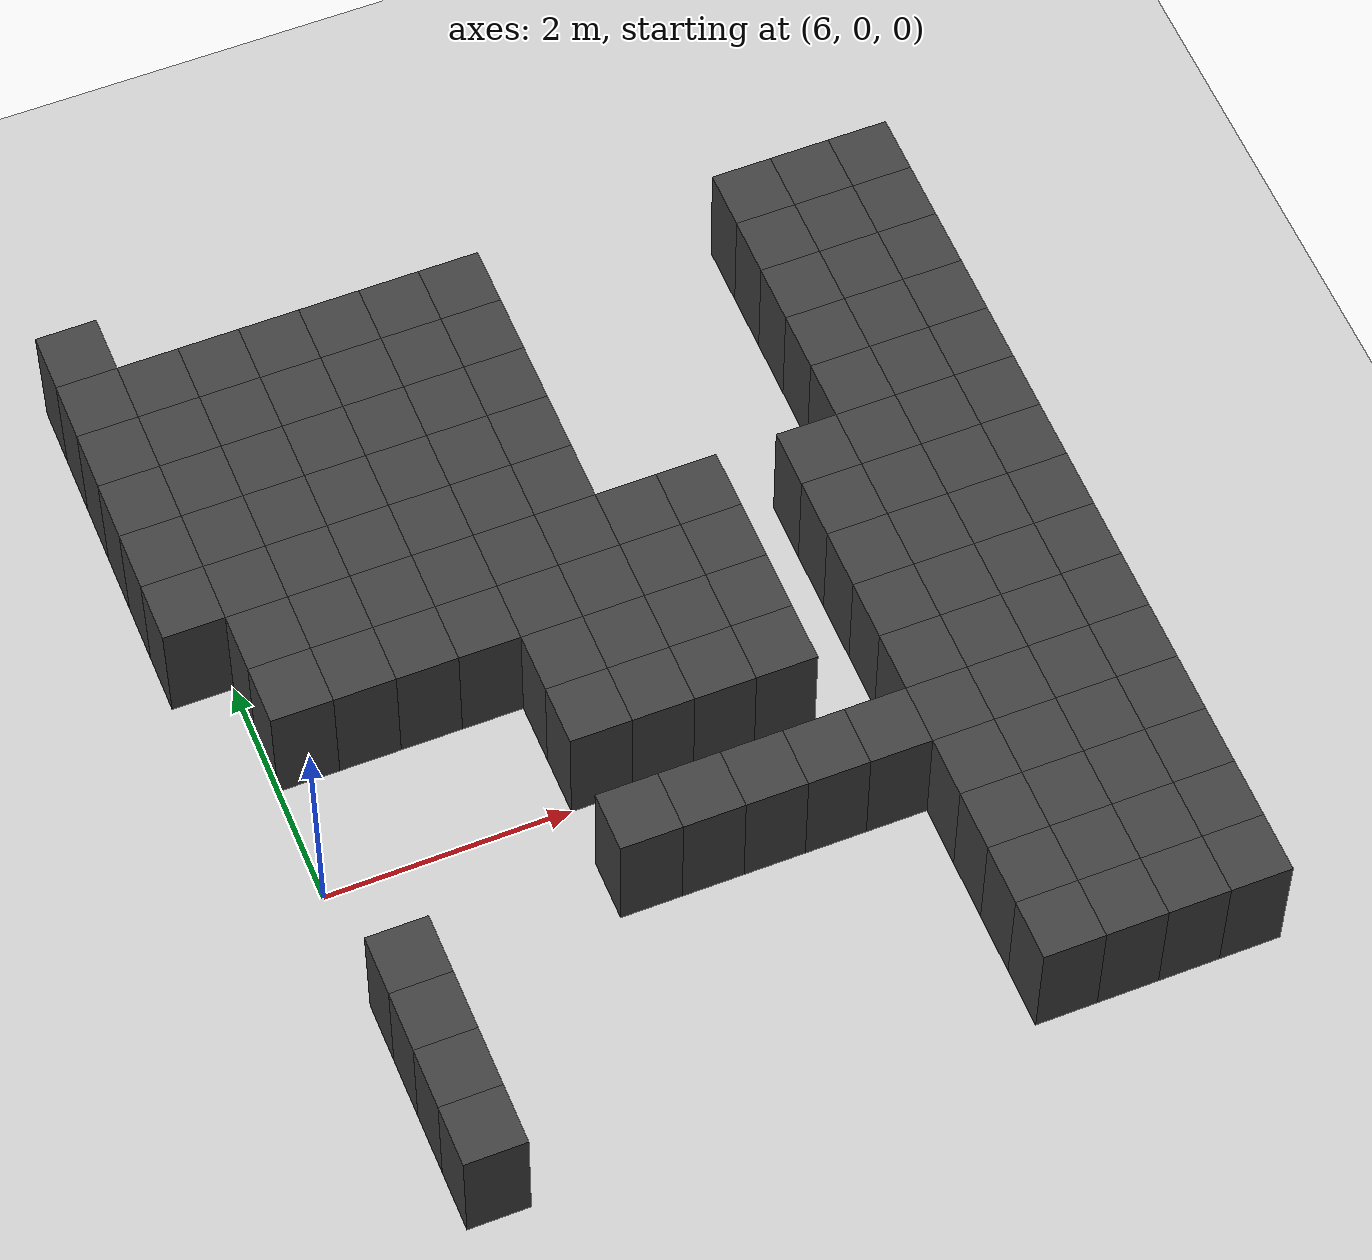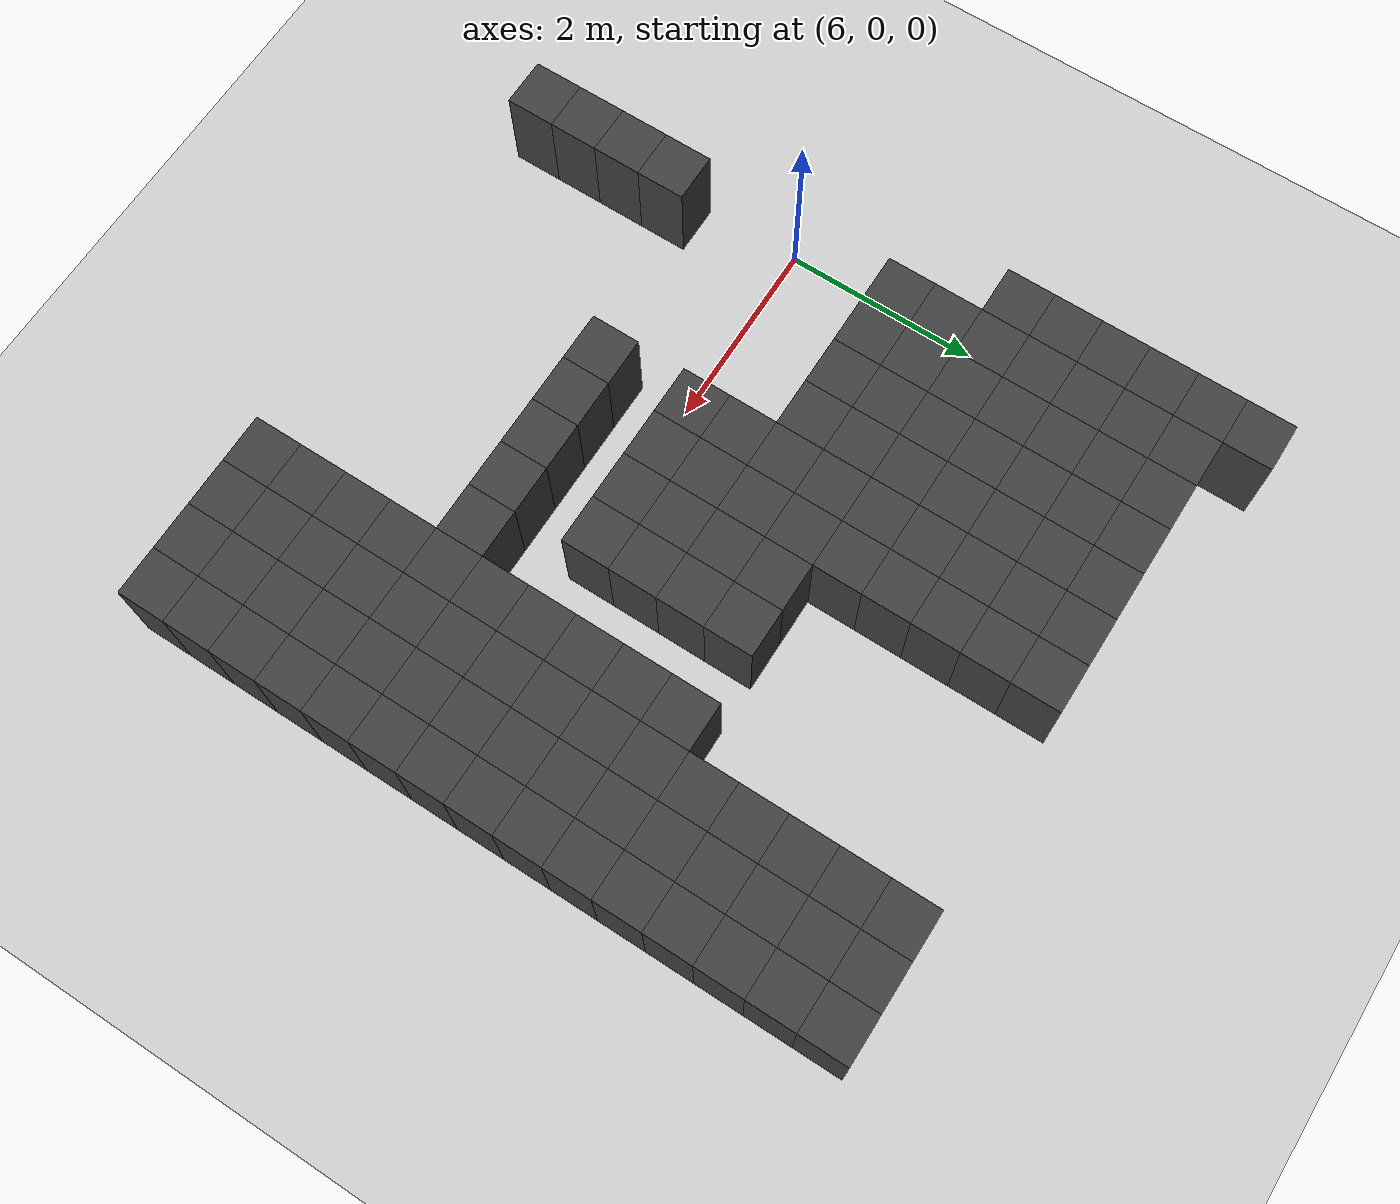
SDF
<sdf version="1.7">
 <world name="map_13994">
  <model name="ground_plane">
   <static>true</static>
   <link name="link">
    <collision name="collision">
     <geometry><plane><normal>0 0 1</normal><size>200 200</size></plane></geometry>
    </collision>
    <visual name="visual">
     <geometry><plane><normal>0 0 1</normal><size>200 200</size></plane></geometry>
     <material><ambient>0.8 0.8 0.8 1</ambient><diffuse>0.8 0.8 0.8 1</diffuse></material>
    </visual>
   </link>
  </model>
  <model name="maze_environment">
   <static>true</static>
   <link name="wall_471">
    <pose>5.750 4.750 0.500 0 0 0</pose>
    <collision name="col"><geometry><box><size>0.5 0.5 1.0</size></box></geometry></collision>
    <visual name="vis">
     <geometry><box><size>0.5 0.5 1.0</size></box></geometry>
     <material><ambient>0.15 0.15 0.15 1</ambient><diffuse>0.25 0.25 0.25 1</diffuse></material>
    </visual>
   </link>
   <link name="wall_511">
    <pose>5.750 4.250 0.500 0 0 0</pose>
    <collision name="col"><geometry><box><size>0.5 0.5 1.0</size></box></geometry></collision>
    <visual name="vis">
     <geometry><box><size>0.5 0.5 1.0</size></box></geometry>
     <material><ambient>0.15 0.15 0.15 1</ambient><diffuse>0.25 0.25 0.25 1</diffuse></material>
    </visual>
   </link>
   <link name="wall_512">
    <pose>6.250 4.250 0.500 0 0 0</pose>
    <collision name="col"><geometry><box><size>0.5 0.5 1.0</size></box></geometry></collision>
    <visual name="vis">
     <geometry><box><size>0.5 0.5 1.0</size></box></geometry>
     <material><ambient>0.15 0.15 0.15 1</ambient><diffuse>0.25 0.25 0.25 1</diffuse></material>
    </visual>
   </link>
   <link name="wall_513">
    <pose>6.750 4.250 0.500 0 0 0</pose>
    <collision name="col"><geometry><box><size>0.5 0.5 1.0</size></box></geometry></collision>
    <visual name="vis">
     <geometry><box><size>0.5 0.5 1.0</size></box></geometry>
     <material><ambient>0.15 0.15 0.15 1</ambient><diffuse>0.25 0.25 0.25 1</diffuse></material>
    </visual>
   </link>
   <link name="wall_514">
    <pose>7.250 4.250 0.500 0 0 0</pose>
    <collision name="col"><geometry><box><size>0.5 0.5 1.0</size></box></geometry></collision>
    <visual name="vis">
     <geometry><box><size>0.5 0.5 1.0</size></box></geometry>
     <material><ambient>0.15 0.15 0.15 1</ambient><diffuse>0.25 0.25 0.25 1</diffuse></material>
    </visual>
   </link>
   <link name="wall_515">
    <pose>7.750 4.250 0.500 0 0 0</pose>
    <collision name="col"><geometry><box><size>0.5 0.5 1.0</size></box></geometry></collision>
    <visual name="vis">
     <geometry><box><size>0.5 0.5 1.0</size></box></geometry>
     <material><ambient>0.15 0.15 0.15 1</ambient><diffuse>0.25 0.25 0.25 1</diffuse></material>
    </visual>
   </link>
   <link name="wall_516">
    <pose>8.250 4.250 0.500 0 0 0</pose>
    <collision name="col"><geometry><box><size>0.5 0.5 1.0</size></box></geometry></collision>
    <visual name="vis">
     <geometry><box><size>0.5 0.5 1.0</size></box></geometry>
     <material><ambient>0.15 0.15 0.15 1</ambient><diffuse>0.25 0.25 0.25 1</diffuse></material>
    </visual>
   </link>
   <link name="wall_517">
    <pose>8.750 4.250 0.500 0 0 0</pose>
    <collision name="col"><geometry><box><size>0.5 0.5 1.0</size></box></geometry></collision>
    <visual name="vis">
     <geometry><box><size>0.5 0.5 1.0</size></box></geometry>
     <material><ambient>0.15 0.15 0.15 1</ambient><diffuse>0.25 0.25 0.25 1</diffuse></material>
    </visual>
   </link>
   <link name="wall_518">
    <pose>11.250 4.250 0.500 0 0 0</pose>
    <collision name="col"><geometry><box><size>0.5 0.5 1.0</size></box></geometry></collision>
    <visual name="vis">
     <geometry><box><size>0.5 0.5 1.0</size></box></geometry>
     <material><ambient>0.15 0.15 0.15 1</ambient><diffuse>0.25 0.25 0.25 1</diffuse></material>
    </visual>
   </link>
   <link name="wall_519">
    <pose>11.750 4.250 0.500 0 0 0</pose>
    <collision name="col"><geometry><box><size>0.5 0.5 1.0</size></box></geometry></collision>
    <visual name="vis">
     <geometry><box><size>0.5 0.5 1.0</size></box></geometry>
     <material><ambient>0.15 0.15 0.15 1</ambient><diffuse>0.25 0.25 0.25 1</diffuse></material>
    </visual>
   </link>
   <link name="wall_520">
    <pose>12.250 4.250 0.500 0 0 0</pose>
    <collision name="col"><geometry><box><size>0.5 0.5 1.0</size></box></geometry></collision>
    <visual name="vis">
     <geometry><box><size>0.5 0.5 1.0</size></box></geometry>
     <material><ambient>0.15 0.15 0.15 1</ambient><diffuse>0.25 0.25 0.25 1</diffuse></material>
    </visual>
   </link>
   <link name="wall_551">
    <pose>5.750 3.750 0.500 0 0 0</pose>
    <collision name="col"><geometry><box><size>0.5 0.5 1.0</size></box></geometry></collision>
    <visual name="vis">
     <geometry><box><size>0.5 0.5 1.0</size></box></geometry>
     <material><ambient>0.15 0.15 0.15 1</ambient><diffuse>0.25 0.25 0.25 1</diffuse></material>
    </visual>
   </link>
   <link name="wall_552">
    <pose>6.250 3.750 0.500 0 0 0</pose>
    <collision name="col"><geometry><box><size>0.5 0.5 1.0</size></box></geometry></collision>
    <visual name="vis">
     <geometry><box><size>0.5 0.5 1.0</size></box></geometry>
     <material><ambient>0.15 0.15 0.15 1</ambient><diffuse>0.25 0.25 0.25 1</diffuse></material>
    </visual>
   </link>
   <link name="wall_553">
    <pose>6.750 3.750 0.500 0 0 0</pose>
    <collision name="col"><geometry><box><size>0.5 0.5 1.0</size></box></geometry></collision>
    <visual name="vis">
     <geometry><box><size>0.5 0.5 1.0</size></box></geometry>
     <material><ambient>0.15 0.15 0.15 1</ambient><diffuse>0.25 0.25 0.25 1</diffuse></material>
    </visual>
   </link>
   <link name="wall_554">
    <pose>7.250 3.750 0.500 0 0 0</pose>
    <collision name="col"><geometry><box><size>0.5 0.5 1.0</size></box></geometry></collision>
    <visual name="vis">
     <geometry><box><size>0.5 0.5 1.0</size></box></geometry>
     <material><ambient>0.15 0.15 0.15 1</ambient><diffuse>0.25 0.25 0.25 1</diffuse></material>
    </visual>
   </link>
   <link name="wall_555">
    <pose>7.750 3.750 0.500 0 0 0</pose>
    <collision name="col"><geometry><box><size>0.5 0.5 1.0</size></box></geometry></collision>
    <visual name="vis">
     <geometry><box><size>0.5 0.5 1.0</size></box></geometry>
     <material><ambient>0.15 0.15 0.15 1</ambient><diffuse>0.25 0.25 0.25 1</diffuse></material>
    </visual>
   </link>
   <link name="wall_556">
    <pose>8.250 3.750 0.500 0 0 0</pose>
    <collision name="col"><geometry><box><size>0.5 0.5 1.0</size></box></geometry></collision>
    <visual name="vis">
     <geometry><box><size>0.5 0.5 1.0</size></box></geometry>
     <material><ambient>0.15 0.15 0.15 1</ambient><diffuse>0.25 0.25 0.25 1</diffuse></material>
    </visual>
   </link>
   <link name="wall_557">
    <pose>8.750 3.750 0.500 0 0 0</pose>
    <collision name="col"><geometry><box><size>0.5 0.5 1.0</size></box></geometry></collision>
    <visual name="vis">
     <geometry><box><size>0.5 0.5 1.0</size></box></geometry>
     <material><ambient>0.15 0.15 0.15 1</ambient><diffuse>0.25 0.25 0.25 1</diffuse></material>
    </visual>
   </link>
   <link name="wall_558">
    <pose>11.250 3.750 0.500 0 0 0</pose>
    <collision name="col"><geometry><box><size>0.5 0.5 1.0</size></box></geometry></collision>
    <visual name="vis">
     <geometry><box><size>0.5 0.5 1.0</size></box></geometry>
     <material><ambient>0.15 0.15 0.15 1</ambient><diffuse>0.25 0.25 0.25 1</diffuse></material>
    </visual>
   </link>
   <link name="wall_559">
    <pose>11.750 3.750 0.500 0 0 0</pose>
    <collision name="col"><geometry><box><size>0.5 0.5 1.0</size></box></geometry></collision>
    <visual name="vis">
     <geometry><box><size>0.5 0.5 1.0</size></box></geometry>
     <material><ambient>0.15 0.15 0.15 1</ambient><diffuse>0.25 0.25 0.25 1</diffuse></material>
    </visual>
   </link>
   <link name="wall_560">
    <pose>12.250 3.750 0.500 0 0 0</pose>
    <collision name="col"><geometry><box><size>0.5 0.5 1.0</size></box></geometry></collision>
    <visual name="vis">
     <geometry><box><size>0.5 0.5 1.0</size></box></geometry>
     <material><ambient>0.15 0.15 0.15 1</ambient><diffuse>0.25 0.25 0.25 1</diffuse></material>
    </visual>
   </link>
   <link name="wall_591">
    <pose>5.750 3.250 0.500 0 0 0</pose>
    <collision name="col"><geometry><box><size>0.5 0.5 1.0</size></box></geometry></collision>
    <visual name="vis">
     <geometry><box><size>0.5 0.5 1.0</size></box></geometry>
     <material><ambient>0.15 0.15 0.15 1</ambient><diffuse>0.25 0.25 0.25 1</diffuse></material>
    </visual>
   </link>
   <link name="wall_592">
    <pose>6.250 3.250 0.500 0 0 0</pose>
    <collision name="col"><geometry><box><size>0.5 0.5 1.0</size></box></geometry></collision>
    <visual name="vis">
     <geometry><box><size>0.5 0.5 1.0</size></box></geometry>
     <material><ambient>0.15 0.15 0.15 1</ambient><diffuse>0.25 0.25 0.25 1</diffuse></material>
    </visual>
   </link>
   <link name="wall_593">
    <pose>6.750 3.250 0.500 0 0 0</pose>
    <collision name="col"><geometry><box><size>0.5 0.5 1.0</size></box></geometry></collision>
    <visual name="vis">
     <geometry><box><size>0.5 0.5 1.0</size></box></geometry>
     <material><ambient>0.15 0.15 0.15 1</ambient><diffuse>0.25 0.25 0.25 1</diffuse></material>
    </visual>
   </link>
   <link name="wall_594">
    <pose>7.250 3.250 0.500 0 0 0</pose>
    <collision name="col"><geometry><box><size>0.5 0.5 1.0</size></box></geometry></collision>
    <visual name="vis">
     <geometry><box><size>0.5 0.5 1.0</size></box></geometry>
     <material><ambient>0.15 0.15 0.15 1</ambient><diffuse>0.25 0.25 0.25 1</diffuse></material>
    </visual>
   </link>
   <link name="wall_595">
    <pose>7.750 3.250 0.500 0 0 0</pose>
    <collision name="col"><geometry><box><size>0.5 0.5 1.0</size></box></geometry></collision>
    <visual name="vis">
     <geometry><box><size>0.5 0.5 1.0</size></box></geometry>
     <material><ambient>0.15 0.15 0.15 1</ambient><diffuse>0.25 0.25 0.25 1</diffuse></material>
    </visual>
   </link>
   <link name="wall_596">
    <pose>8.250 3.250 0.500 0 0 0</pose>
    <collision name="col"><geometry><box><size>0.5 0.5 1.0</size></box></geometry></collision>
    <visual name="vis">
     <geometry><box><size>0.5 0.5 1.0</size></box></geometry>
     <material><ambient>0.15 0.15 0.15 1</ambient><diffuse>0.25 0.25 0.25 1</diffuse></material>
    </visual>
   </link>
   <link name="wall_597">
    <pose>8.750 3.250 0.500 0 0 0</pose>
    <collision name="col"><geometry><box><size>0.5 0.5 1.0</size></box></geometry></collision>
    <visual name="vis">
     <geometry><box><size>0.5 0.5 1.0</size></box></geometry>
     <material><ambient>0.15 0.15 0.15 1</ambient><diffuse>0.25 0.25 0.25 1</diffuse></material>
    </visual>
   </link>
   <link name="wall_598">
    <pose>11.250 3.250 0.500 0 0 0</pose>
    <collision name="col"><geometry><box><size>0.5 0.5 1.0</size></box></geometry></collision>
    <visual name="vis">
     <geometry><box><size>0.5 0.5 1.0</size></box></geometry>
     <material><ambient>0.15 0.15 0.15 1</ambient><diffuse>0.25 0.25 0.25 1</diffuse></material>
    </visual>
   </link>
   <link name="wall_599">
    <pose>11.750 3.250 0.500 0 0 0</pose>
    <collision name="col"><geometry><box><size>0.5 0.5 1.0</size></box></geometry></collision>
    <visual name="vis">
     <geometry><box><size>0.5 0.5 1.0</size></box></geometry>
     <material><ambient>0.15 0.15 0.15 1</ambient><diffuse>0.25 0.25 0.25 1</diffuse></material>
    </visual>
   </link>
   <link name="wall_600">
    <pose>12.250 3.250 0.500 0 0 0</pose>
    <collision name="col"><geometry><box><size>0.5 0.5 1.0</size></box></geometry></collision>
    <visual name="vis">
     <geometry><box><size>0.5 0.5 1.0</size></box></geometry>
     <material><ambient>0.15 0.15 0.15 1</ambient><diffuse>0.25 0.25 0.25 1</diffuse></material>
    </visual>
   </link>
   <link name="wall_627">
    <pose>5.750 2.750 0.500 0 0 0</pose>
    <collision name="col"><geometry><box><size>0.5 0.5 1.0</size></box></geometry></collision>
    <visual name="vis">
     <geometry><box><size>0.5 0.5 1.0</size></box></geometry>
     <material><ambient>0.15 0.15 0.15 1</ambient><diffuse>0.25 0.25 0.25 1</diffuse></material>
    </visual>
   </link>
   <link name="wall_628">
    <pose>6.250 2.750 0.500 0 0 0</pose>
    <collision name="col"><geometry><box><size>0.5 0.5 1.0</size></box></geometry></collision>
    <visual name="vis">
     <geometry><box><size>0.5 0.5 1.0</size></box></geometry>
     <material><ambient>0.15 0.15 0.15 1</ambient><diffuse>0.25 0.25 0.25 1</diffuse></material>
    </visual>
   </link>
   <link name="wall_629">
    <pose>6.750 2.750 0.500 0 0 0</pose>
    <collision name="col"><geometry><box><size>0.5 0.5 1.0</size></box></geometry></collision>
    <visual name="vis">
     <geometry><box><size>0.5 0.5 1.0</size></box></geometry>
     <material><ambient>0.15 0.15 0.15 1</ambient><diffuse>0.25 0.25 0.25 1</diffuse></material>
    </visual>
   </link>
   <link name="wall_630">
    <pose>7.250 2.750 0.500 0 0 0</pose>
    <collision name="col"><geometry><box><size>0.5 0.5 1.0</size></box></geometry></collision>
    <visual name="vis">
     <geometry><box><size>0.5 0.5 1.0</size></box></geometry>
     <material><ambient>0.15 0.15 0.15 1</ambient><diffuse>0.25 0.25 0.25 1</diffuse></material>
    </visual>
   </link>
   <link name="wall_631">
    <pose>7.750 2.750 0.500 0 0 0</pose>
    <collision name="col"><geometry><box><size>0.5 0.5 1.0</size></box></geometry></collision>
    <visual name="vis">
     <geometry><box><size>0.5 0.5 1.0</size></box></geometry>
     <material><ambient>0.15 0.15 0.15 1</ambient><diffuse>0.25 0.25 0.25 1</diffuse></material>
    </visual>
   </link>
   <link name="wall_632">
    <pose>8.250 2.750 0.500 0 0 0</pose>
    <collision name="col"><geometry><box><size>0.5 0.5 1.0</size></box></geometry></collision>
    <visual name="vis">
     <geometry><box><size>0.5 0.5 1.0</size></box></geometry>
     <material><ambient>0.15 0.15 0.15 1</ambient><diffuse>0.25 0.25 0.25 1</diffuse></material>
    </visual>
   </link>
   <link name="wall_633">
    <pose>8.750 2.750 0.500 0 0 0</pose>
    <collision name="col"><geometry><box><size>0.5 0.5 1.0</size></box></geometry></collision>
    <visual name="vis">
     <geometry><box><size>0.5 0.5 1.0</size></box></geometry>
     <material><ambient>0.15 0.15 0.15 1</ambient><diffuse>0.25 0.25 0.25 1</diffuse></material>
    </visual>
   </link>
   <link name="wall_634">
    <pose>11.250 2.750 0.500 0 0 0</pose>
    <collision name="col"><geometry><box><size>0.5 0.5 1.0</size></box></geometry></collision>
    <visual name="vis">
     <geometry><box><size>0.5 0.5 1.0</size></box></geometry>
     <material><ambient>0.15 0.15 0.15 1</ambient><diffuse>0.25 0.25 0.25 1</diffuse></material>
    </visual>
   </link>
   <link name="wall_635">
    <pose>11.750 2.750 0.500 0 0 0</pose>
    <collision name="col"><geometry><box><size>0.5 0.5 1.0</size></box></geometry></collision>
    <visual name="vis">
     <geometry><box><size>0.5 0.5 1.0</size></box></geometry>
     <material><ambient>0.15 0.15 0.15 1</ambient><diffuse>0.25 0.25 0.25 1</diffuse></material>
    </visual>
   </link>
   <link name="wall_636">
    <pose>12.250 2.750 0.500 0 0 0</pose>
    <collision name="col"><geometry><box><size>0.5 0.5 1.0</size></box></geometry></collision>
    <visual name="vis">
     <geometry><box><size>0.5 0.5 1.0</size></box></geometry>
     <material><ambient>0.15 0.15 0.15 1</ambient><diffuse>0.25 0.25 0.25 1</diffuse></material>
    </visual>
   </link>
   <link name="wall_656">
    <pose>5.750 2.250 0.500 0 0 0</pose>
    <collision name="col"><geometry><box><size>0.5 0.5 1.0</size></box></geometry></collision>
    <visual name="vis">
     <geometry><box><size>0.5 0.5 1.0</size></box></geometry>
     <material><ambient>0.15 0.15 0.15 1</ambient><diffuse>0.25 0.25 0.25 1</diffuse></material>
    </visual>
   </link>
   <link name="wall_657">
    <pose>6.250 2.250 0.500 0 0 0</pose>
    <collision name="col"><geometry><box><size>0.5 0.5 1.0</size></box></geometry></collision>
    <visual name="vis">
     <geometry><box><size>0.5 0.5 1.0</size></box></geometry>
     <material><ambient>0.15 0.15 0.15 1</ambient><diffuse>0.25 0.25 0.25 1</diffuse></material>
    </visual>
   </link>
   <link name="wall_658">
    <pose>6.750 2.250 0.500 0 0 0</pose>
    <collision name="col"><geometry><box><size>0.5 0.5 1.0</size></box></geometry></collision>
    <visual name="vis">
     <geometry><box><size>0.5 0.5 1.0</size></box></geometry>
     <material><ambient>0.15 0.15 0.15 1</ambient><diffuse>0.25 0.25 0.25 1</diffuse></material>
    </visual>
   </link>
   <link name="wall_659">
    <pose>7.250 2.250 0.500 0 0 0</pose>
    <collision name="col"><geometry><box><size>0.5 0.5 1.0</size></box></geometry></collision>
    <visual name="vis">
     <geometry><box><size>0.5 0.5 1.0</size></box></geometry>
     <material><ambient>0.15 0.15 0.15 1</ambient><diffuse>0.25 0.25 0.25 1</diffuse></material>
    </visual>
   </link>
   <link name="wall_660">
    <pose>7.750 2.250 0.500 0 0 0</pose>
    <collision name="col"><geometry><box><size>0.5 0.5 1.0</size></box></geometry></collision>
    <visual name="vis">
     <geometry><box><size>0.5 0.5 1.0</size></box></geometry>
     <material><ambient>0.15 0.15 0.15 1</ambient><diffuse>0.25 0.25 0.25 1</diffuse></material>
    </visual>
   </link>
   <link name="wall_661">
    <pose>8.250 2.250 0.500 0 0 0</pose>
    <collision name="col"><geometry><box><size>0.5 0.5 1.0</size></box></geometry></collision>
    <visual name="vis">
     <geometry><box><size>0.5 0.5 1.0</size></box></geometry>
     <material><ambient>0.15 0.15 0.15 1</ambient><diffuse>0.25 0.25 0.25 1</diffuse></material>
    </visual>
   </link>
   <link name="wall_662">
    <pose>8.750 2.250 0.500 0 0 0</pose>
    <collision name="col"><geometry><box><size>0.5 0.5 1.0</size></box></geometry></collision>
    <visual name="vis">
     <geometry><box><size>0.5 0.5 1.0</size></box></geometry>
     <material><ambient>0.15 0.15 0.15 1</ambient><diffuse>0.25 0.25 0.25 1</diffuse></material>
    </visual>
   </link>
   <link name="wall_663">
    <pose>11.250 2.250 0.500 0 0 0</pose>
    <collision name="col"><geometry><box><size>0.5 0.5 1.0</size></box></geometry></collision>
    <visual name="vis">
     <geometry><box><size>0.5 0.5 1.0</size></box></geometry>
     <material><ambient>0.15 0.15 0.15 1</ambient><diffuse>0.25 0.25 0.25 1</diffuse></material>
    </visual>
   </link>
   <link name="wall_664">
    <pose>11.750 2.250 0.500 0 0 0</pose>
    <collision name="col"><geometry><box><size>0.5 0.5 1.0</size></box></geometry></collision>
    <visual name="vis">
     <geometry><box><size>0.5 0.5 1.0</size></box></geometry>
     <material><ambient>0.15 0.15 0.15 1</ambient><diffuse>0.25 0.25 0.25 1</diffuse></material>
    </visual>
   </link>
   <link name="wall_665">
    <pose>12.250 2.250 0.500 0 0 0</pose>
    <collision name="col"><geometry><box><size>0.5 0.5 1.0</size></box></geometry></collision>
    <visual name="vis">
     <geometry><box><size>0.5 0.5 1.0</size></box></geometry>
     <material><ambient>0.15 0.15 0.15 1</ambient><diffuse>0.25 0.25 0.25 1</diffuse></material>
    </visual>
   </link>
   <link name="wall_686">
    <pose>6.250 1.750 0.500 0 0 0</pose>
    <collision name="col"><geometry><box><size>0.5 0.5 1.0</size></box></geometry></collision>
    <visual name="vis">
     <geometry><box><size>0.5 0.5 1.0</size></box></geometry>
     <material><ambient>0.15 0.15 0.15 1</ambient><diffuse>0.25 0.25 0.25 1</diffuse></material>
    </visual>
   </link>
   <link name="wall_687">
    <pose>6.750 1.750 0.500 0 0 0</pose>
    <collision name="col"><geometry><box><size>0.5 0.5 1.0</size></box></geometry></collision>
    <visual name="vis">
     <geometry><box><size>0.5 0.5 1.0</size></box></geometry>
     <material><ambient>0.15 0.15 0.15 1</ambient><diffuse>0.25 0.25 0.25 1</diffuse></material>
    </visual>
   </link>
   <link name="wall_688">
    <pose>7.250 1.750 0.500 0 0 0</pose>
    <collision name="col"><geometry><box><size>0.5 0.5 1.0</size></box></geometry></collision>
    <visual name="vis">
     <geometry><box><size>0.5 0.5 1.0</size></box></geometry>
     <material><ambient>0.15 0.15 0.15 1</ambient><diffuse>0.25 0.25 0.25 1</diffuse></material>
    </visual>
   </link>
   <link name="wall_689">
    <pose>7.750 1.750 0.500 0 0 0</pose>
    <collision name="col"><geometry><box><size>0.5 0.5 1.0</size></box></geometry></collision>
    <visual name="vis">
     <geometry><box><size>0.5 0.5 1.0</size></box></geometry>
     <material><ambient>0.15 0.15 0.15 1</ambient><diffuse>0.25 0.25 0.25 1</diffuse></material>
    </visual>
   </link>
   <link name="wall_690">
    <pose>8.250 1.750 0.500 0 0 0</pose>
    <collision name="col"><geometry><box><size>0.5 0.5 1.0</size></box></geometry></collision>
    <visual name="vis">
     <geometry><box><size>0.5 0.5 1.0</size></box></geometry>
     <material><ambient>0.15 0.15 0.15 1</ambient><diffuse>0.25 0.25 0.25 1</diffuse></material>
    </visual>
   </link>
   <link name="wall_691">
    <pose>8.750 1.750 0.500 0 0 0</pose>
    <collision name="col"><geometry><box><size>0.5 0.5 1.0</size></box></geometry></collision>
    <visual name="vis">
     <geometry><box><size>0.5 0.5 1.0</size></box></geometry>
     <material><ambient>0.15 0.15 0.15 1</ambient><diffuse>0.25 0.25 0.25 1</diffuse></material>
    </visual>
   </link>
   <link name="wall_692">
    <pose>9.250 1.750 0.500 0 0 0</pose>
    <collision name="col"><geometry><box><size>0.5 0.5 1.0</size></box></geometry></collision>
    <visual name="vis">
     <geometry><box><size>0.5 0.5 1.0</size></box></geometry>
     <material><ambient>0.15 0.15 0.15 1</ambient><diffuse>0.25 0.25 0.25 1</diffuse></material>
    </visual>
   </link>
   <link name="wall_693">
    <pose>9.750 1.750 0.500 0 0 0</pose>
    <collision name="col"><geometry><box><size>0.5 0.5 1.0</size></box></geometry></collision>
    <visual name="vis">
     <geometry><box><size>0.5 0.5 1.0</size></box></geometry>
     <material><ambient>0.15 0.15 0.15 1</ambient><diffuse>0.25 0.25 0.25 1</diffuse></material>
    </visual>
   </link>
   <link name="wall_694">
    <pose>10.750 1.750 0.500 0 0 0</pose>
    <collision name="col"><geometry><box><size>0.5 0.5 1.0</size></box></geometry></collision>
    <visual name="vis">
     <geometry><box><size>0.5 0.5 1.0</size></box></geometry>
     <material><ambient>0.15 0.15 0.15 1</ambient><diffuse>0.25 0.25 0.25 1</diffuse></material>
    </visual>
   </link>
   <link name="wall_695">
    <pose>11.250 1.750 0.500 0 0 0</pose>
    <collision name="col"><geometry><box><size>0.5 0.5 1.0</size></box></geometry></collision>
    <visual name="vis">
     <geometry><box><size>0.5 0.5 1.0</size></box></geometry>
     <material><ambient>0.15 0.15 0.15 1</ambient><diffuse>0.25 0.25 0.25 1</diffuse></material>
    </visual>
   </link>
   <link name="wall_696">
    <pose>11.750 1.750 0.500 0 0 0</pose>
    <collision name="col"><geometry><box><size>0.5 0.5 1.0</size></box></geometry></collision>
    <visual name="vis">
     <geometry><box><size>0.5 0.5 1.0</size></box></geometry>
     <material><ambient>0.15 0.15 0.15 1</ambient><diffuse>0.25 0.25 0.25 1</diffuse></material>
    </visual>
   </link>
   <link name="wall_697">
    <pose>12.250 1.750 0.500 0 0 0</pose>
    <collision name="col"><geometry><box><size>0.5 0.5 1.0</size></box></geometry></collision>
    <visual name="vis">
     <geometry><box><size>0.5 0.5 1.0</size></box></geometry>
     <material><ambient>0.15 0.15 0.15 1</ambient><diffuse>0.25 0.25 0.25 1</diffuse></material>
    </visual>
   </link>
   <link name="wall_718">
    <pose>6.250 1.250 0.500 0 0 0</pose>
    <collision name="col"><geometry><box><size>0.5 0.5 1.0</size></box></geometry></collision>
    <visual name="vis">
     <geometry><box><size>0.5 0.5 1.0</size></box></geometry>
     <material><ambient>0.15 0.15 0.15 1</ambient><diffuse>0.25 0.25 0.25 1</diffuse></material>
    </visual>
   </link>
   <link name="wall_719">
    <pose>6.750 1.250 0.500 0 0 0</pose>
    <collision name="col"><geometry><box><size>0.5 0.5 1.0</size></box></geometry></collision>
    <visual name="vis">
     <geometry><box><size>0.5 0.5 1.0</size></box></geometry>
     <material><ambient>0.15 0.15 0.15 1</ambient><diffuse>0.25 0.25 0.25 1</diffuse></material>
    </visual>
   </link>
   <link name="wall_720">
    <pose>7.250 1.250 0.500 0 0 0</pose>
    <collision name="col"><geometry><box><size>0.5 0.5 1.0</size></box></geometry></collision>
    <visual name="vis">
     <geometry><box><size>0.5 0.5 1.0</size></box></geometry>
     <material><ambient>0.15 0.15 0.15 1</ambient><diffuse>0.25 0.25 0.25 1</diffuse></material>
    </visual>
   </link>
   <link name="wall_721">
    <pose>7.750 1.250 0.500 0 0 0</pose>
    <collision name="col"><geometry><box><size>0.5 0.5 1.0</size></box></geometry></collision>
    <visual name="vis">
     <geometry><box><size>0.5 0.5 1.0</size></box></geometry>
     <material><ambient>0.15 0.15 0.15 1</ambient><diffuse>0.25 0.25 0.25 1</diffuse></material>
    </visual>
   </link>
   <link name="wall_722">
    <pose>8.250 1.250 0.500 0 0 0</pose>
    <collision name="col"><geometry><box><size>0.5 0.5 1.0</size></box></geometry></collision>
    <visual name="vis">
     <geometry><box><size>0.5 0.5 1.0</size></box></geometry>
     <material><ambient>0.15 0.15 0.15 1</ambient><diffuse>0.25 0.25 0.25 1</diffuse></material>
    </visual>
   </link>
   <link name="wall_723">
    <pose>8.750 1.250 0.500 0 0 0</pose>
    <collision name="col"><geometry><box><size>0.5 0.5 1.0</size></box></geometry></collision>
    <visual name="vis">
     <geometry><box><size>0.5 0.5 1.0</size></box></geometry>
     <material><ambient>0.15 0.15 0.15 1</ambient><diffuse>0.25 0.25 0.25 1</diffuse></material>
    </visual>
   </link>
   <link name="wall_724">
    <pose>9.250 1.250 0.500 0 0 0</pose>
    <collision name="col"><geometry><box><size>0.5 0.5 1.0</size></box></geometry></collision>
    <visual name="vis">
     <geometry><box><size>0.5 0.5 1.0</size></box></geometry>
     <material><ambient>0.15 0.15 0.15 1</ambient><diffuse>0.25 0.25 0.25 1</diffuse></material>
    </visual>
   </link>
   <link name="wall_725">
    <pose>9.750 1.250 0.500 0 0 0</pose>
    <collision name="col"><geometry><box><size>0.5 0.5 1.0</size></box></geometry></collision>
    <visual name="vis">
     <geometry><box><size>0.5 0.5 1.0</size></box></geometry>
     <material><ambient>0.15 0.15 0.15 1</ambient><diffuse>0.25 0.25 0.25 1</diffuse></material>
    </visual>
   </link>
   <link name="wall_726">
    <pose>10.750 1.250 0.500 0 0 0</pose>
    <collision name="col"><geometry><box><size>0.5 0.5 1.0</size></box></geometry></collision>
    <visual name="vis">
     <geometry><box><size>0.5 0.5 1.0</size></box></geometry>
     <material><ambient>0.15 0.15 0.15 1</ambient><diffuse>0.25 0.25 0.25 1</diffuse></material>
    </visual>
   </link>
   <link name="wall_727">
    <pose>11.250 1.250 0.500 0 0 0</pose>
    <collision name="col"><geometry><box><size>0.5 0.5 1.0</size></box></geometry></collision>
    <visual name="vis">
     <geometry><box><size>0.5 0.5 1.0</size></box></geometry>
     <material><ambient>0.15 0.15 0.15 1</ambient><diffuse>0.25 0.25 0.25 1</diffuse></material>
    </visual>
   </link>
   <link name="wall_728">
    <pose>11.750 1.250 0.500 0 0 0</pose>
    <collision name="col"><geometry><box><size>0.5 0.5 1.0</size></box></geometry></collision>
    <visual name="vis">
     <geometry><box><size>0.5 0.5 1.0</size></box></geometry>
     <material><ambient>0.15 0.15 0.15 1</ambient><diffuse>0.25 0.25 0.25 1</diffuse></material>
    </visual>
   </link>
   <link name="wall_729">
    <pose>12.250 1.250 0.500 0 0 0</pose>
    <collision name="col"><geometry><box><size>0.5 0.5 1.0</size></box></geometry></collision>
    <visual name="vis">
     <geometry><box><size>0.5 0.5 1.0</size></box></geometry>
     <material><ambient>0.15 0.15 0.15 1</ambient><diffuse>0.25 0.25 0.25 1</diffuse></material>
    </visual>
   </link>
   <link name="wall_748">
    <pose>8.250 0.750 0.500 0 0 0</pose>
    <collision name="col"><geometry><box><size>0.5 0.5 1.0</size></box></geometry></collision>
    <visual name="vis">
     <geometry><box><size>0.5 0.5 1.0</size></box></geometry>
     <material><ambient>0.15 0.15 0.15 1</ambient><diffuse>0.25 0.25 0.25 1</diffuse></material>
    </visual>
   </link>
   <link name="wall_749">
    <pose>8.750 0.750 0.500 0 0 0</pose>
    <collision name="col"><geometry><box><size>0.5 0.5 1.0</size></box></geometry></collision>
    <visual name="vis">
     <geometry><box><size>0.5 0.5 1.0</size></box></geometry>
     <material><ambient>0.15 0.15 0.15 1</ambient><diffuse>0.25 0.25 0.25 1</diffuse></material>
    </visual>
   </link>
   <link name="wall_750">
    <pose>9.250 0.750 0.500 0 0 0</pose>
    <collision name="col"><geometry><box><size>0.5 0.5 1.0</size></box></geometry></collision>
    <visual name="vis">
     <geometry><box><size>0.5 0.5 1.0</size></box></geometry>
     <material><ambient>0.15 0.15 0.15 1</ambient><diffuse>0.25 0.25 0.25 1</diffuse></material>
    </visual>
   </link>
   <link name="wall_751">
    <pose>9.750 0.750 0.500 0 0 0</pose>
    <collision name="col"><geometry><box><size>0.5 0.5 1.0</size></box></geometry></collision>
    <visual name="vis">
     <geometry><box><size>0.5 0.5 1.0</size></box></geometry>
     <material><ambient>0.15 0.15 0.15 1</ambient><diffuse>0.25 0.25 0.25 1</diffuse></material>
    </visual>
   </link>
   <link name="wall_752">
    <pose>10.750 0.750 0.500 0 0 0</pose>
    <collision name="col"><geometry><box><size>0.5 0.5 1.0</size></box></geometry></collision>
    <visual name="vis">
     <geometry><box><size>0.5 0.5 1.0</size></box></geometry>
     <material><ambient>0.15 0.15 0.15 1</ambient><diffuse>0.25 0.25 0.25 1</diffuse></material>
    </visual>
   </link>
   <link name="wall_753">
    <pose>11.250 0.750 0.500 0 0 0</pose>
    <collision name="col"><geometry><box><size>0.5 0.5 1.0</size></box></geometry></collision>
    <visual name="vis">
     <geometry><box><size>0.5 0.5 1.0</size></box></geometry>
     <material><ambient>0.15 0.15 0.15 1</ambient><diffuse>0.25 0.25 0.25 1</diffuse></material>
    </visual>
   </link>
   <link name="wall_754">
    <pose>11.750 0.750 0.500 0 0 0</pose>
    <collision name="col"><geometry><box><size>0.5 0.5 1.0</size></box></geometry></collision>
    <visual name="vis">
     <geometry><box><size>0.5 0.5 1.0</size></box></geometry>
     <material><ambient>0.15 0.15 0.15 1</ambient><diffuse>0.25 0.25 0.25 1</diffuse></material>
    </visual>
   </link>
   <link name="wall_755">
    <pose>12.250 0.750 0.500 0 0 0</pose>
    <collision name="col"><geometry><box><size>0.5 0.5 1.0</size></box></geometry></collision>
    <visual name="vis">
     <geometry><box><size>0.5 0.5 1.0</size></box></geometry>
     <material><ambient>0.15 0.15 0.15 1</ambient><diffuse>0.25 0.25 0.25 1</diffuse></material>
    </visual>
   </link>
   <link name="wall_777">
    <pose>8.250 0.250 0.500 0 0 0</pose>
    <collision name="col"><geometry><box><size>0.5 0.5 1.0</size></box></geometry></collision>
    <visual name="vis">
     <geometry><box><size>0.5 0.5 1.0</size></box></geometry>
     <material><ambient>0.15 0.15 0.15 1</ambient><diffuse>0.25 0.25 0.25 1</diffuse></material>
    </visual>
   </link>
   <link name="wall_778">
    <pose>8.750 0.250 0.500 0 0 0</pose>
    <collision name="col"><geometry><box><size>0.5 0.5 1.0</size></box></geometry></collision>
    <visual name="vis">
     <geometry><box><size>0.5 0.5 1.0</size></box></geometry>
     <material><ambient>0.15 0.15 0.15 1</ambient><diffuse>0.25 0.25 0.25 1</diffuse></material>
    </visual>
   </link>
   <link name="wall_779">
    <pose>9.250 0.250 0.500 0 0 0</pose>
    <collision name="col"><geometry><box><size>0.5 0.5 1.0</size></box></geometry></collision>
    <visual name="vis">
     <geometry><box><size>0.5 0.5 1.0</size></box></geometry>
     <material><ambient>0.15 0.15 0.15 1</ambient><diffuse>0.25 0.25 0.25 1</diffuse></material>
    </visual>
   </link>
   <link name="wall_780">
    <pose>9.750 0.250 0.500 0 0 0</pose>
    <collision name="col"><geometry><box><size>0.5 0.5 1.0</size></box></geometry></collision>
    <visual name="vis">
     <geometry><box><size>0.5 0.5 1.0</size></box></geometry>
     <material><ambient>0.15 0.15 0.15 1</ambient><diffuse>0.25 0.25 0.25 1</diffuse></material>
    </visual>
   </link>
   <link name="wall_781">
    <pose>10.750 0.250 0.500 0 0 0</pose>
    <collision name="col"><geometry><box><size>0.5 0.5 1.0</size></box></geometry></collision>
    <visual name="vis">
     <geometry><box><size>0.5 0.5 1.0</size></box></geometry>
     <material><ambient>0.15 0.15 0.15 1</ambient><diffuse>0.25 0.25 0.25 1</diffuse></material>
    </visual>
   </link>
   <link name="wall_782">
    <pose>11.250 0.250 0.500 0 0 0</pose>
    <collision name="col"><geometry><box><size>0.5 0.5 1.0</size></box></geometry></collision>
    <visual name="vis">
     <geometry><box><size>0.5 0.5 1.0</size></box></geometry>
     <material><ambient>0.15 0.15 0.15 1</ambient><diffuse>0.25 0.25 0.25 1</diffuse></material>
    </visual>
   </link>
   <link name="wall_783">
    <pose>11.750 0.250 0.500 0 0 0</pose>
    <collision name="col"><geometry><box><size>0.5 0.5 1.0</size></box></geometry></collision>
    <visual name="vis">
     <geometry><box><size>0.5 0.5 1.0</size></box></geometry>
     <material><ambient>0.15 0.15 0.15 1</ambient><diffuse>0.25 0.25 0.25 1</diffuse></material>
    </visual>
   </link>
   <link name="wall_784">
    <pose>12.250 0.250 0.500 0 0 0</pose>
    <collision name="col"><geometry><box><size>0.5 0.5 1.0</size></box></geometry></collision>
    <visual name="vis">
     <geometry><box><size>0.5 0.5 1.0</size></box></geometry>
     <material><ambient>0.15 0.15 0.15 1</ambient><diffuse>0.25 0.25 0.25 1</diffuse></material>
    </visual>
   </link>
   <link name="wall_812">
    <pose>10.750 -0.250 0.500 0 0 0</pose>
    <collision name="col"><geometry><box><size>0.5 0.5 1.0</size></box></geometry></collision>
    <visual name="vis">
     <geometry><box><size>0.5 0.5 1.0</size></box></geometry>
     <material><ambient>0.15 0.15 0.15 1</ambient><diffuse>0.25 0.25 0.25 1</diffuse></material>
    </visual>
   </link>
   <link name="wall_813">
    <pose>11.250 -0.250 0.500 0 0 0</pose>
    <collision name="col"><geometry><box><size>0.5 0.5 1.0</size></box></geometry></collision>
    <visual name="vis">
     <geometry><box><size>0.5 0.5 1.0</size></box></geometry>
     <material><ambient>0.15 0.15 0.15 1</ambient><diffuse>0.25 0.25 0.25 1</diffuse></material>
    </visual>
   </link>
   <link name="wall_814">
    <pose>11.750 -0.250 0.500 0 0 0</pose>
    <collision name="col"><geometry><box><size>0.5 0.5 1.0</size></box></geometry></collision>
    <visual name="vis">
     <geometry><box><size>0.5 0.5 1.0</size></box></geometry>
     <material><ambient>0.15 0.15 0.15 1</ambient><diffuse>0.25 0.25 0.25 1</diffuse></material>
    </visual>
   </link>
   <link name="wall_815">
    <pose>12.250 -0.250 0.500 0 0 0</pose>
    <collision name="col"><geometry><box><size>0.5 0.5 1.0</size></box></geometry></collision>
    <visual name="vis">
     <geometry><box><size>0.5 0.5 1.0</size></box></geometry>
     <material><ambient>0.15 0.15 0.15 1</ambient><diffuse>0.25 0.25 0.25 1</diffuse></material>
    </visual>
   </link>
   <link name="wall_843">
    <pose>8.250 -0.750 0.500 0 0 0</pose>
    <collision name="col"><geometry><box><size>0.5 0.5 1.0</size></box></geometry></collision>
    <visual name="vis">
     <geometry><box><size>0.5 0.5 1.0</size></box></geometry>
     <material><ambient>0.15 0.15 0.15 1</ambient><diffuse>0.25 0.25 0.25 1</diffuse></material>
    </visual>
   </link>
   <link name="wall_844">
    <pose>8.750 -0.750 0.500 0 0 0</pose>
    <collision name="col"><geometry><box><size>0.5 0.5 1.0</size></box></geometry></collision>
    <visual name="vis">
     <geometry><box><size>0.5 0.5 1.0</size></box></geometry>
     <material><ambient>0.15 0.15 0.15 1</ambient><diffuse>0.25 0.25 0.25 1</diffuse></material>
    </visual>
   </link>
   <link name="wall_845">
    <pose>9.250 -0.750 0.500 0 0 0</pose>
    <collision name="col"><geometry><box><size>0.5 0.5 1.0</size></box></geometry></collision>
    <visual name="vis">
     <geometry><box><size>0.5 0.5 1.0</size></box></geometry>
     <material><ambient>0.15 0.15 0.15 1</ambient><diffuse>0.25 0.25 0.25 1</diffuse></material>
    </visual>
   </link>
   <link name="wall_846">
    <pose>9.750 -0.750 0.500 0 0 0</pose>
    <collision name="col"><geometry><box><size>0.5 0.5 1.0</size></box></geometry></collision>
    <visual name="vis">
     <geometry><box><size>0.5 0.5 1.0</size></box></geometry>
     <material><ambient>0.15 0.15 0.15 1</ambient><diffuse>0.25 0.25 0.25 1</diffuse></material>
    </visual>
   </link>
   <link name="wall_847">
    <pose>10.250 -0.750 0.500 0 0 0</pose>
    <collision name="col"><geometry><box><size>0.5 0.5 1.0</size></box></geometry></collision>
    <visual name="vis">
     <geometry><box><size>0.5 0.5 1.0</size></box></geometry>
     <material><ambient>0.15 0.15 0.15 1</ambient><diffuse>0.25 0.25 0.25 1</diffuse></material>
    </visual>
   </link>
   <link name="wall_848">
    <pose>10.750 -0.750 0.500 0 0 0</pose>
    <collision name="col"><geometry><box><size>0.5 0.5 1.0</size></box></geometry></collision>
    <visual name="vis">
     <geometry><box><size>0.5 0.5 1.0</size></box></geometry>
     <material><ambient>0.15 0.15 0.15 1</ambient><diffuse>0.25 0.25 0.25 1</diffuse></material>
    </visual>
   </link>
   <link name="wall_849">
    <pose>11.250 -0.750 0.500 0 0 0</pose>
    <collision name="col"><geometry><box><size>0.5 0.5 1.0</size></box></geometry></collision>
    <visual name="vis">
     <geometry><box><size>0.5 0.5 1.0</size></box></geometry>
     <material><ambient>0.15 0.15 0.15 1</ambient><diffuse>0.25 0.25 0.25 1</diffuse></material>
    </visual>
   </link>
   <link name="wall_850">
    <pose>11.750 -0.750 0.500 0 0 0</pose>
    <collision name="col"><geometry><box><size>0.5 0.5 1.0</size></box></geometry></collision>
    <visual name="vis">
     <geometry><box><size>0.5 0.5 1.0</size></box></geometry>
     <material><ambient>0.15 0.15 0.15 1</ambient><diffuse>0.25 0.25 0.25 1</diffuse></material>
    </visual>
   </link>
   <link name="wall_851">
    <pose>12.250 -0.750 0.500 0 0 0</pose>
    <collision name="col"><geometry><box><size>0.5 0.5 1.0</size></box></geometry></collision>
    <visual name="vis">
     <geometry><box><size>0.5 0.5 1.0</size></box></geometry>
     <material><ambient>0.15 0.15 0.15 1</ambient><diffuse>0.25 0.25 0.25 1</diffuse></material>
    </visual>
   </link>
   <link name="wall_888">
    <pose>6.250 -1.250 0.500 0 0 0</pose>
    <collision name="col"><geometry><box><size>0.5 0.5 1.0</size></box></geometry></collision>
    <visual name="vis">
     <geometry><box><size>0.5 0.5 1.0</size></box></geometry>
     <material><ambient>0.15 0.15 0.15 1</ambient><diffuse>0.25 0.25 0.25 1</diffuse></material>
    </visual>
   </link>
   <link name="wall_889">
    <pose>10.750 -1.250 0.500 0 0 0</pose>
    <collision name="col"><geometry><box><size>0.5 0.5 1.0</size></box></geometry></collision>
    <visual name="vis">
     <geometry><box><size>0.5 0.5 1.0</size></box></geometry>
     <material><ambient>0.15 0.15 0.15 1</ambient><diffuse>0.25 0.25 0.25 1</diffuse></material>
    </visual>
   </link>
   <link name="wall_890">
    <pose>11.250 -1.250 0.500 0 0 0</pose>
    <collision name="col"><geometry><box><size>0.5 0.5 1.0</size></box></geometry></collision>
    <visual name="vis">
     <geometry><box><size>0.5 0.5 1.0</size></box></geometry>
     <material><ambient>0.15 0.15 0.15 1</ambient><diffuse>0.25 0.25 0.25 1</diffuse></material>
    </visual>
   </link>
   <link name="wall_891">
    <pose>11.750 -1.250 0.500 0 0 0</pose>
    <collision name="col"><geometry><box><size>0.5 0.5 1.0</size></box></geometry></collision>
    <visual name="vis">
     <geometry><box><size>0.5 0.5 1.0</size></box></geometry>
     <material><ambient>0.15 0.15 0.15 1</ambient><diffuse>0.25 0.25 0.25 1</diffuse></material>
    </visual>
   </link>
   <link name="wall_892">
    <pose>12.250 -1.250 0.500 0 0 0</pose>
    <collision name="col"><geometry><box><size>0.5 0.5 1.0</size></box></geometry></collision>
    <visual name="vis">
     <geometry><box><size>0.5 0.5 1.0</size></box></geometry>
     <material><ambient>0.15 0.15 0.15 1</ambient><diffuse>0.25 0.25 0.25 1</diffuse></material>
    </visual>
   </link>
   <link name="wall_929">
    <pose>6.250 -1.750 0.500 0 0 0</pose>
    <collision name="col"><geometry><box><size>0.5 0.5 1.0</size></box></geometry></collision>
    <visual name="vis">
     <geometry><box><size>0.5 0.5 1.0</size></box></geometry>
     <material><ambient>0.15 0.15 0.15 1</ambient><diffuse>0.25 0.25 0.25 1</diffuse></material>
    </visual>
   </link>
   <link name="wall_930">
    <pose>10.750 -1.750 0.500 0 0 0</pose>
    <collision name="col"><geometry><box><size>0.5 0.5 1.0</size></box></geometry></collision>
    <visual name="vis">
     <geometry><box><size>0.5 0.5 1.0</size></box></geometry>
     <material><ambient>0.15 0.15 0.15 1</ambient><diffuse>0.25 0.25 0.25 1</diffuse></material>
    </visual>
   </link>
   <link name="wall_931">
    <pose>11.250 -1.750 0.500 0 0 0</pose>
    <collision name="col"><geometry><box><size>0.5 0.5 1.0</size></box></geometry></collision>
    <visual name="vis">
     <geometry><box><size>0.5 0.5 1.0</size></box></geometry>
     <material><ambient>0.15 0.15 0.15 1</ambient><diffuse>0.25 0.25 0.25 1</diffuse></material>
    </visual>
   </link>
   <link name="wall_932">
    <pose>11.750 -1.750 0.500 0 0 0</pose>
    <collision name="col"><geometry><box><size>0.5 0.5 1.0</size></box></geometry></collision>
    <visual name="vis">
     <geometry><box><size>0.5 0.5 1.0</size></box></geometry>
     <material><ambient>0.15 0.15 0.15 1</ambient><diffuse>0.25 0.25 0.25 1</diffuse></material>
    </visual>
   </link>
   <link name="wall_933">
    <pose>12.250 -1.750 0.500 0 0 0</pose>
    <collision name="col"><geometry><box><size>0.5 0.5 1.0</size></box></geometry></collision>
    <visual name="vis">
     <geometry><box><size>0.5 0.5 1.0</size></box></geometry>
     <material><ambient>0.15 0.15 0.15 1</ambient><diffuse>0.25 0.25 0.25 1</diffuse></material>
    </visual>
   </link>
   <link name="wall_970">
    <pose>6.250 -2.250 0.500 0 0 0</pose>
    <collision name="col"><geometry><box><size>0.5 0.5 1.0</size></box></geometry></collision>
    <visual name="vis">
     <geometry><box><size>0.5 0.5 1.0</size></box></geometry>
     <material><ambient>0.15 0.15 0.15 1</ambient><diffuse>0.25 0.25 0.25 1</diffuse></material>
    </visual>
   </link>
   <link name="wall_971">
    <pose>10.750 -2.250 0.500 0 0 0</pose>
    <collision name="col"><geometry><box><size>0.5 0.5 1.0</size></box></geometry></collision>
    <visual name="vis">
     <geometry><box><size>0.5 0.5 1.0</size></box></geometry>
     <material><ambient>0.15 0.15 0.15 1</ambient><diffuse>0.25 0.25 0.25 1</diffuse></material>
    </visual>
   </link>
   <link name="wall_972">
    <pose>11.250 -2.250 0.500 0 0 0</pose>
    <collision name="col"><geometry><box><size>0.5 0.5 1.0</size></box></geometry></collision>
    <visual name="vis">
     <geometry><box><size>0.5 0.5 1.0</size></box></geometry>
     <material><ambient>0.15 0.15 0.15 1</ambient><diffuse>0.25 0.25 0.25 1</diffuse></material>
    </visual>
   </link>
   <link name="wall_973">
    <pose>11.750 -2.250 0.500 0 0 0</pose>
    <collision name="col"><geometry><box><size>0.5 0.5 1.0</size></box></geometry></collision>
    <visual name="vis">
     <geometry><box><size>0.5 0.5 1.0</size></box></geometry>
     <material><ambient>0.15 0.15 0.15 1</ambient><diffuse>0.25 0.25 0.25 1</diffuse></material>
    </visual>
   </link>
   <link name="wall_974">
    <pose>12.250 -2.250 0.500 0 0 0</pose>
    <collision name="col"><geometry><box><size>0.5 0.5 1.0</size></box></geometry></collision>
    <visual name="vis">
     <geometry><box><size>0.5 0.5 1.0</size></box></geometry>
     <material><ambient>0.15 0.15 0.15 1</ambient><diffuse>0.25 0.25 0.25 1</diffuse></material>
    </visual>
   </link>
   <link name="wall_1011">
    <pose>6.250 -2.750 0.500 0 0 0</pose>
    <collision name="col"><geometry><box><size>0.5 0.5 1.0</size></box></geometry></collision>
    <visual name="vis">
     <geometry><box><size>0.5 0.5 1.0</size></box></geometry>
     <material><ambient>0.15 0.15 0.15 1</ambient><diffuse>0.25 0.25 0.25 1</diffuse></material>
    </visual>
   </link>
   <link name="wall_1012">
    <pose>10.750 -2.750 0.500 0 0 0</pose>
    <collision name="col"><geometry><box><size>0.5 0.5 1.0</size></box></geometry></collision>
    <visual name="vis">
     <geometry><box><size>0.5 0.5 1.0</size></box></geometry>
     <material><ambient>0.15 0.15 0.15 1</ambient><diffuse>0.25 0.25 0.25 1</diffuse></material>
    </visual>
   </link>
   <link name="wall_1013">
    <pose>11.250 -2.750 0.500 0 0 0</pose>
    <collision name="col"><geometry><box><size>0.5 0.5 1.0</size></box></geometry></collision>
    <visual name="vis">
     <geometry><box><size>0.5 0.5 1.0</size></box></geometry>
     <material><ambient>0.15 0.15 0.15 1</ambient><diffuse>0.25 0.25 0.25 1</diffuse></material>
    </visual>
   </link>
   <link name="wall_1014">
    <pose>11.750 -2.750 0.500 0 0 0</pose>
    <collision name="col"><geometry><box><size>0.5 0.5 1.0</size></box></geometry></collision>
    <visual name="vis">
     <geometry><box><size>0.5 0.5 1.0</size></box></geometry>
     <material><ambient>0.15 0.15 0.15 1</ambient><diffuse>0.25 0.25 0.25 1</diffuse></material>
    </visual>
   </link>
   <link name="wall_1015">
    <pose>12.250 -2.750 0.500 0 0 0</pose>
    <collision name="col"><geometry><box><size>0.5 0.5 1.0</size></box></geometry></collision>
    <visual name="vis">
     <geometry><box><size>0.5 0.5 1.0</size></box></geometry>
     <material><ambient>0.15 0.15 0.15 1</ambient><diffuse>0.25 0.25 0.25 1</diffuse></material>
    </visual>
   </link>
  </model>
 </world>
</sdf>
